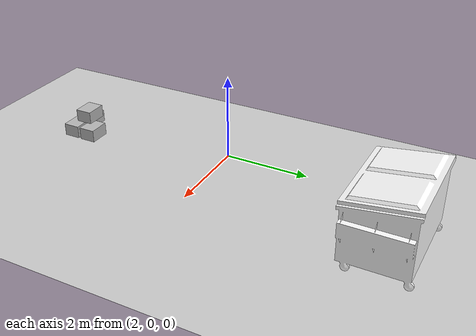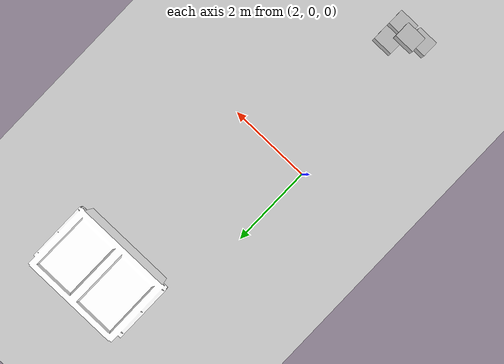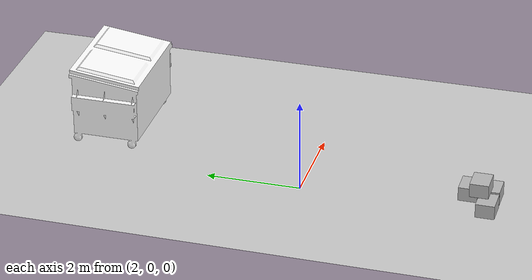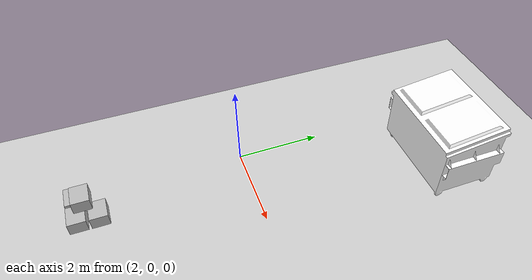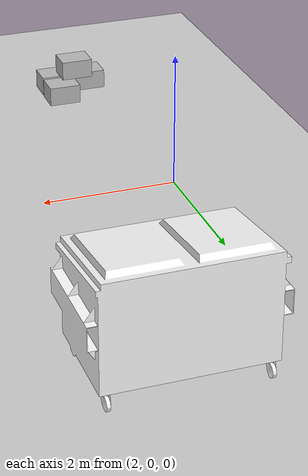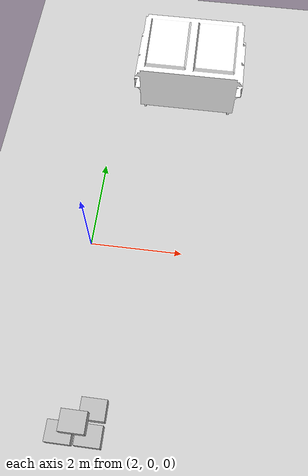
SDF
<sdf version="1.10">
 <world name="empty">
  <model name="ground_plane">
   <static>true</static>
   <link name="link">
    <collision name="collision">
     <geometry><plane><normal>0 0 1</normal><size>100 100</size></plane></geometry>
     <surface><friction><ode><mu>50</mu></ode></friction></surface>
    </collision>
    <visual name="visual">
     <cast_shadows>false</cast_shadows>
     <geometry><plane><normal>0 0 1</normal><size>100 100</size></plane></geometry>
     <material>
      <script><uri>file://media/materials/scripts/gazebo.material</uri><name>Gazebo/Grey</name></script>
     </material>
    </visual>
    <inertial>
     <mass>1</mass>
     <inertia><ixx>1</ixx><ixy>0</ixy><ixz>0</ixz><iyy>1</iyy><iyz>0</iyz><izz>1</izz></inertia>
    </inertial>
   </link>
  </model>
  <model name="Dumpster">
   <link name="link">
    <collision name="collision">
     <geometry><mesh><scale>1.5 1.5 1.5</scale><uri>model://dumpster/meshes/dumpster.dae</uri></mesh></geometry>
    </collision>
    <visual name="visual">
     <geometry><mesh><scale>1.5 1.5 1.5</scale><uri>model://dumpster/meshes/dumpster.dae</uri></mesh></geometry>
     <material>
      <script>
       <uri>model://dumpster/materials/scripts</uri>
       <uri>model://dumpster/materials/textures</uri>
       <name>Dumpster/Diffuse</name>
      </script>
      <diffuse>1.0 1.0 1.0</diffuse>
      <specular>1.0 1.0 1.0</specular>
      <pbr>
       <metal>
        <albedo_map>model://dumpster/materials/textures/Dumpster_Diffuse.png</albedo_map>
        <metalness_map>model://dumpster/materials/textures/Dumpster_Spec.png</metalness_map>
       </metal>
      </pbr>
     </material>
    </visual>
    <inertial>
     <inertia><ixx>1</ixx><ixy>0</ixy><ixz>0</ixz><iyy>1</iyy><iyz>0</iyz><izz>1</izz></inertia>
     <mass>1</mass>
    </inertial>
   </link>
   <pose>3.7072799999999999 4.4509999999999996 0.0013760000000000001 2.0000000000000003e-06 0 0</pose>
   <static>false</static>
  </model>
  <model name="cardboard_box">
   <pose>2.1133000000000002 -3.9186700000000001 0.14899899999999999 -9.9999999999999995e-07 9.9999999999999995e-07 -1.9469794287553565e-29</pose>
   <link name="link">
    <inertial>
     <mass>2</mass>
     <inertia>
      <ixx>0.041666700000000001</ixx>
      <ixy>0</ixy>
      <ixz>0</ixz>
      <iyy>0.0566667</iyy>
      <iyz>0</iyz>
      <izz>0.0683333</izz>
     </inertia>
    </inertial>
    <collision name="collision">
     <geometry><box><size>0.5 0.40000000000000002 0.29999999999999999</size></box></geometry>
     <surface>
      <friction><ode><mu>1</mu><mu2>1</mu2></ode></friction>
      <contact>
       <ode><kp>10000000</kp><kd>1</kd><min_depth>0.001</min_depth><max_vel>0.10000000000000001</max_vel></ode>
      </contact>
     </surface>
    </collision>
    <visual name="visual">
     <pose>0 0 -0.14999999999999999 0 0 0</pose>
     <geometry>
      <mesh>
       <uri>model://cardboard_box/meshes/cardboard_box.dae</uri>
       <scale>1.25932 1.00745 0.75559100000000001</scale>
      </mesh>
     </geometry>
    </visual>
   </link>
   <static>false</static>
  </model>
  <model name="cardboard_box_1">
   <pose>2.6721900000000001 -3.9123399999999999 0.14899899999999999 0 -9.9999999999999995e-07 0</pose>
   <link name="link">
    <inertial>
     <mass>2</mass>
     <inertia>
      <ixx>0.041666700000000001</ixx>
      <ixy>0</ixy>
      <ixz>0</ixz>
      <iyy>0.0566667</iyy>
      <iyz>0</iyz>
      <izz>0.0683333</izz>
     </inertia>
    </inertial>
    <collision name="collision">
     <geometry><box><size>0.5 0.40000000000000002 0.29999999999999999</size></box></geometry>
     <surface>
      <friction><ode><mu>1</mu><mu2>1</mu2></ode></friction>
      <contact>
       <ode><kp>10000000</kp><kd>1</kd><min_depth>0.001</min_depth><max_vel>0.10000000000000001</max_vel></ode>
      </contact>
     </surface>
    </collision>
    <visual name="visual">
     <pose>0 0 -0.14999999999999999 0 0 0</pose>
     <geometry>
      <mesh>
       <uri>model://cardboard_box/meshes/cardboard_box.dae</uri>
       <scale>1.25932 1.00745 0.75559100000000001</scale>
      </mesh>
     </geometry>
    </visual>
   </link>
   <static>false</static>
  </model>
  <model name="cardboard_box_2">
   <pose>2.6780300000000001 -3.4481099999999998 0.14899899999999999 9.9999999999999995e-07 -9.9999999999999995e-07 -1.9469794287553565e-29</pose>
   <link name="link">
    <inertial>
     <mass>2</mass>
     <inertia>
      <ixx>0.041666700000000001</ixx>
      <ixy>0</ixy>
      <ixz>0</ixz>
      <iyy>0.0566667</iyy>
      <iyz>0</iyz>
      <izz>0.0683333</izz>
     </inertia>
    </inertial>
    <collision name="collision">
     <geometry><box><size>0.5 0.40000000000000002 0.29999999999999999</size></box></geometry>
     <surface>
      <friction><ode><mu>1</mu><mu2>1</mu2></ode></friction>
      <contact>
       <ode><kp>10000000</kp><kd>1</kd><min_depth>0.001</min_depth><max_vel>0.10000000000000001</max_vel></ode>
      </contact>
     </surface>
    </collision>
    <visual name="visual">
     <pose>0 0 -0.14999999999999999 0 0 0</pose>
     <geometry>
      <mesh>
       <uri>model://cardboard_box/meshes/cardboard_box.dae</uri>
       <scale>1.25932 1.00745 0.75559100000000001</scale>
      </mesh>
     </geometry>
    </visual>
   </link>
   <static>false</static>
  </model>
  <model name="cardboard_box_3">
   <pose>2.3810500000000001 -3.73373 0.44822200000000001 0.00037399999999999998 -0.00010200000000000001 6.47705292040201e-25</pose>
   <link name="link">
    <inertial>
     <mass>2</mass>
     <inertia>
      <ixx>0.041666700000000001</ixx>
      <ixy>0</ixy>
      <ixz>0</ixz>
      <iyy>0.0566667</iyy>
      <iyz>0</iyz>
      <izz>0.0683333</izz>
     </inertia>
    </inertial>
    <collision name="collision">
     <geometry><box><size>0.5 0.40000000000000002 0.29999999999999999</size></box></geometry>
     <surface>
      <friction><ode><mu>1</mu><mu2>1</mu2></ode></friction>
      <contact>
       <ode><kp>10000000</kp><kd>1</kd><min_depth>0.001</min_depth><max_vel>0.10000000000000001</max_vel></ode>
      </contact>
     </surface>
    </collision>
    <visual name="visual">
     <pose>0 0 -0.14999999999999999 0 0 0</pose>
     <geometry>
      <mesh>
       <uri>model://cardboard_box/meshes/cardboard_box.dae</uri>
       <scale>1.25932 1.00745 0.75559100000000001</scale>
      </mesh>
     </geometry>
    </visual>
   </link>
   <static>false</static>
  </model>
 </world>
</sdf>
